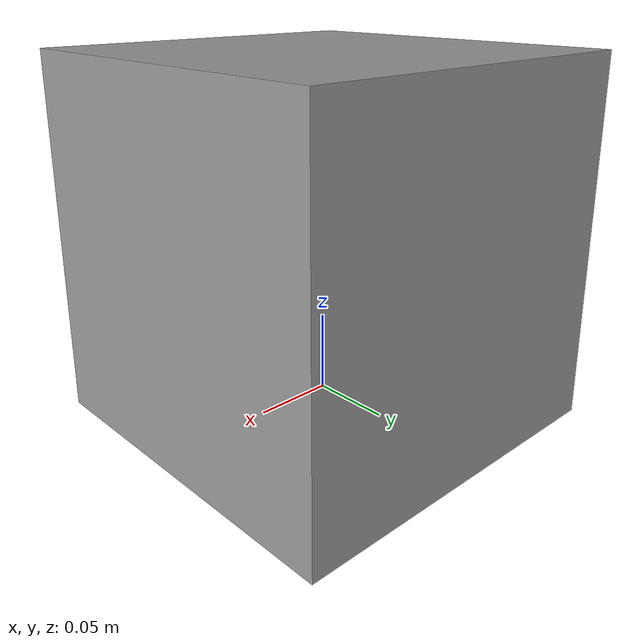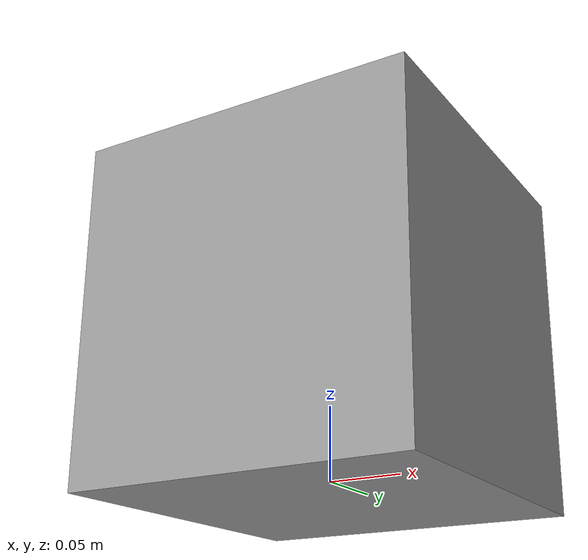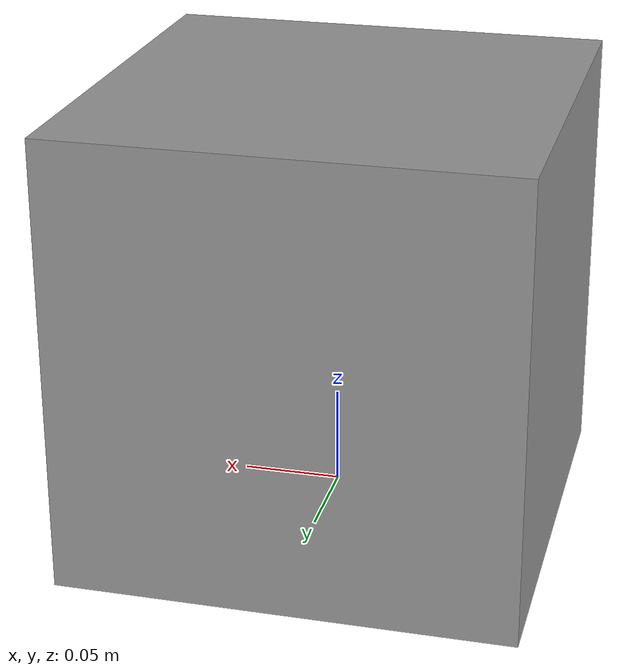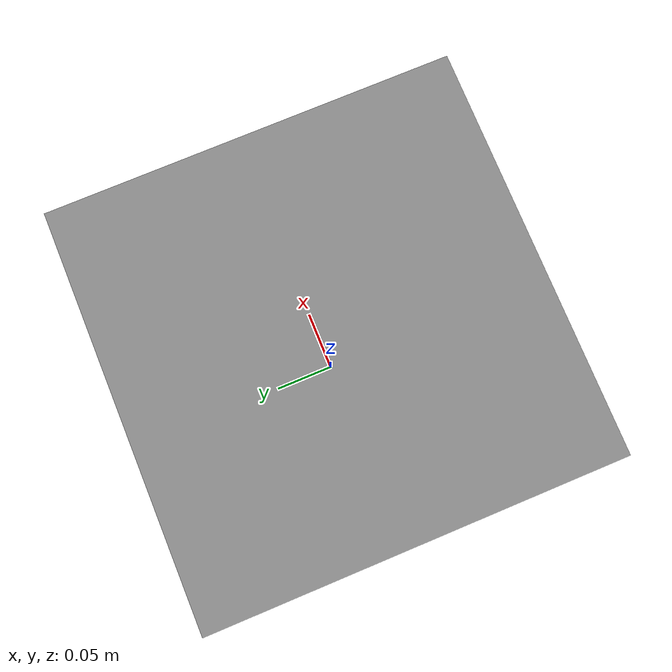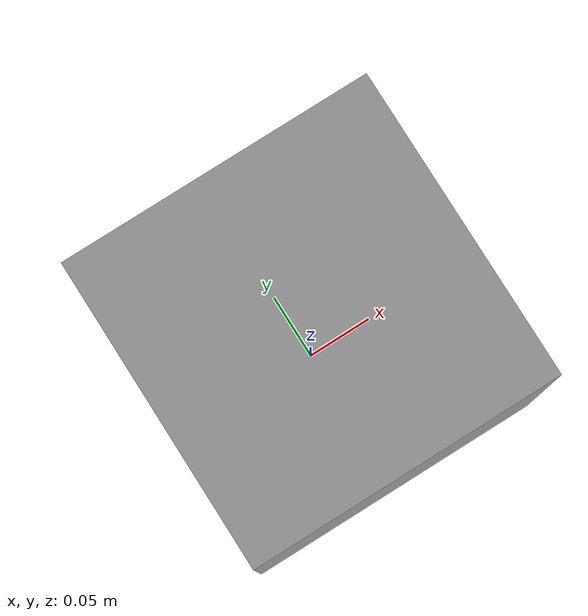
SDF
<?xml version='1.0'?>
<sdf version='1.6'>
  <model name='cube_blue'>
    <link name='link_1'>
      <pose frame=''>0 0 0.1 0 -0 0</pose>
      <inertial>
        <mass>1</mass>
        <inertia>
          <ixx>0.1</ixx>
          <ixy>0</ixy>
          <ixz>0</ixz>
          <iyy>0.1</iyy>
          <iyz>0</iyz>
          <izz>0.1</izz>
        </inertia>
        <pose frame=''>0 0 0 0 -0 0</pose>
      </inertial>
      <gravity>1</gravity>
      <self_collide>0</self_collide>
      <kinematic>0</kinematic>
      <visual name='visual'>
        <pose frame=''>0 0 0 0 -0 0</pose>
        <!-- Geometry -->
        <geometry>
          <box>
            <size>0.23 0.23 0.23</size> <!-- Tamanho da caixa (comprimento, largura, altura) -->
          </box>
        </geometry>
        <material>
          <lighting>1</lighting>
          <script>
            <uri>file://media/materials/scripts/gazebo.material</uri>
            <name>Gazebo/Grey</name>
            <!-- Cor -->
          </script>
          <ambient>1.82 0.77 0.82 1</ambient>
          <diffuse>1.82 0.77 0.82 1</diffuse>
          <specular>0 0 0 1</specular>
          <emissive>0 0 0 1</emissive>
          <shader type='vertex'>
            <normal_map>__default__</normal_map>
          </shader>
        </material>
        <cast_shadows>1</cast_shadows>
        <transparency>0</transparency>
      </visual>
      <collision name='collision'>
        <laser_retro>0</laser_retro>
        <max_contacts>10</max_contacts>
        <pose frame=''>0 0 0 0 -0 0</pose>
        <geometry>
          <box>
            <size>0.23 0.23 0.23</size> <!-- Tamanho da caixa (comprimento, largura, altura) -->
          </box>
        </geometry>
        <surface>
          <friction>
            <ode>
              <mu>1</mu>
              <mu2>1</mu2>
              <fdir1>0 0 0</fdir1>
              <slip1>0</slip1>
              <slip2>0</slip2>
            </ode>
            <torsional>
              <coefficient>1</coefficient>
              <patch_radius>0</patch_radius>
              <surface_radius>0</surface_radius>
              <use_patch_radius>1</use_patch_radius>
              <ode>
                <slip>0</slip>
              </ode>
            </torsional>
          </friction>
          <bounce>
            <restitution_coefficient>0</restitution_coefficient>
            <threshold>1e+06</threshold>
          </bounce>
          <contact>
            <collide_without_contact>0</collide_without_contact>
            <collide_without_contact_bitmask>1</collide_without_contact_bitmask>
            <collide_bitmask>1</collide_bitmask>
            <ode>
              <soft_cfm>0</soft_cfm>
              <soft_erp>0.2</soft_erp>
              <kp>1e+13</kp>
              <kd>1</kd>
              <max_vel>0.01</max_vel>
              <min_depth>0</min_depth>
            </ode>
            <bullet>
              <split_impulse>1</split_impulse>
              <split_impulse_penetration_threshold>-0.01</split_impulse_penetration_threshold>
              <soft_cfm>0</soft_cfm>
              <soft_erp>0.2</soft_erp>
              <kp>1e+13</kp>
              <kd>1</kd>
            </bullet>
          </contact>
        </surface>
      </collision>
    </link>
    <static>1</static>
    <allow_auto_disable>1</allow_auto_disable>
  </model>
</sdf>
